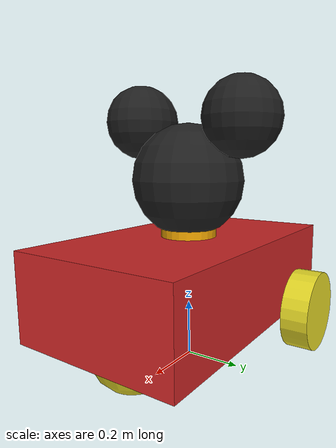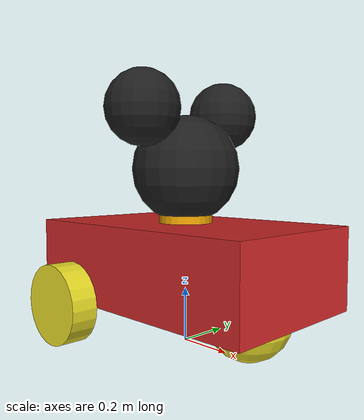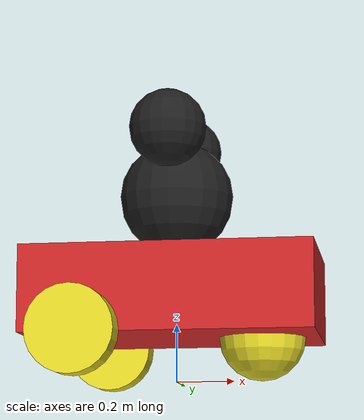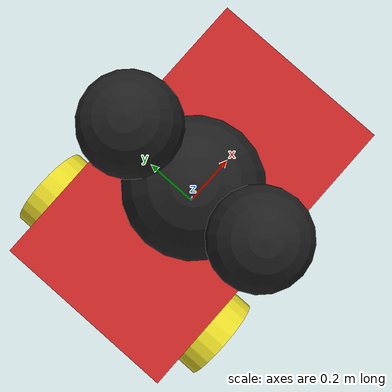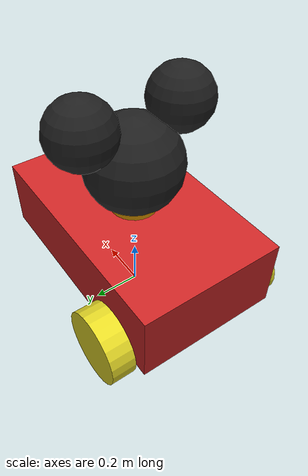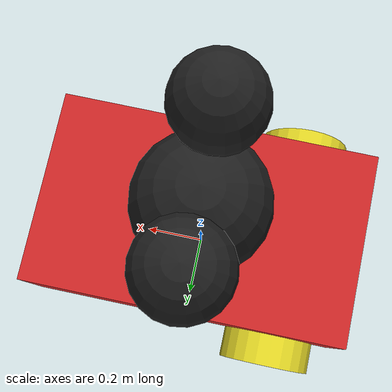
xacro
<?xml version="1.0"?>
<!-- URDF DESCRIPTION OF THE DIFFERENTIAL DRIVE ROBOT               -->
<!-- Made by Aleksandar Haber                                       -->
<!-- See the license!                                               -->
<!-- This code is the ownership of Aleksandar Haber                 -->
<!-- FOR ALL THE DIMENSIONS SEE THE PDF FILES THAT COME WITH THIS TUTORIAL  -->
<robot name="differential_drive_robot" xmlns:xacro="https://www.ros.org/wiki/xacro">

<!--            Geometry  and constants                             -->
<!-- Pi constant -->
<xacro:property name="pi_const" value="3.14159265"/>

<!-- Body dimensions -->
<xacro:property name="a" value="1"  />
<xacro:property name="b" value="0.3" />
<xacro:property name="c" value="0.6"/>

<!-- Wheel and castor dimensions -->
<!-- Wheel and caster radius -->
<xacro:property name="r" value="0.15"/>
<!-- Wheel width -->
<xacro:property name="d" value="0.1"/>

<xacro:property name="s1" value="${b/2+r}"/>
<xacro:property name="s2" value="${2*r}"/>
<xacro:property name="s3" value="${2*r}"/>
<xacro:property name="s4" value="${c/2+d/2}"/>

<!--     Mass and inertia                                           -->

<!-- Material density -->
<!-- Body material density -->
<xacro:property name="d1" value="2710.0"/>
<!-- Wheel material density -->
<xacro:property name="d2" value="2710.0"/>
<!-- Caster material density -->
<xacro:property name="d3" value="2710.0"/>

<!-- Robot body mass, wheel mass, caster mass -->
<!-- body  -->
<xacro:property name="m1" value="${d1*a*b*c}"/>
<!-- wheel -->
<xacro:property name="m2" value="${d2*pi_const*r*r*d}"/>
<!-- caster -->
<xacro:property name="m3" value="${d3*(4.0/3.0)*pi_const*r*r*r}"/>

<!-- Moments of inertia of the robot body -->
<xacro:property name="Ix_body" value="${(1/12)*m1*(b*b+c*c) }" />
<xacro:property name="Iy_body" value="${(1/12)*m1*(a*a+b*b) }" />
<xacro:property name="Iz_body" value="${(1/12)*m1*(a*a+c*c) }" />

<!-- Moments of inertia of the wheel -->
<xacro:property name="Iz_wheel" value="${0.5*m2*r*r}" />
<xacro:property name="I_wheel" value="${(1.0/12.0)*m2*(3.0*r*r+d*d)}" />

<!-- Moments of inertia of the caster sphere -->
<xacro:property name="I_caster" value="${(2.0/5.0)*m3*r*r}" />

<!-- This macro defines the complete inertial section of the robot body -->
<!-- It is used later in the code -->
<xacro:macro name="inertia_body">
    <inertial>
    <!-- Displacement and orientation of the center of the mass frame of the link with respect to the link frame oritin -->
    <origin rpy="0 0 0" xyz="0 0 ${s1}"/>
    <mass value="${m1}"/>
    <inertia ixx="${Ix_body}" ixy="0.0" ixz="0.0" iyy="${Iy_body}" iyz="0" izz="${Iz_body}" />
    </inertial>
</xacro:macro>

<!-- This macro defines the complete inertial section of the wheel -->
<!-- It is used later in the code -->
<xacro:macro name="inertia_wheel">
    <inertial>
    <origin rpy="1.570795 0 0" xyz="0 0 0"/>
    <mass value="${m2}"/>
    <inertia ixx="${I_wheel}" ixy="0.0" ixz="0.0" iyy="${I_wheel}" iyz="0" izz="${Iz_wheel}" />
    </inertial>
</xacro:macro>

<!-- This macro defines the complete inertial section of the caster -->
<!-- It is used later in the code -->
<xacro:macro name="inertia_caster">
    <inertial>
    <origin rpy="0 0 0" xyz="0 0 0"/>
    <mass value="${m3}"/>
    <inertia ixx="${I_caster}" ixy="0.0" ixz="0.0" iyy="${I_caster}" iyz="0" izz="${I_caster}" />
    </inertial>
</xacro:macro>

<!--     Aesthetic top ball (with collision)                        -->

<!-- Ball radius -->
<xacro:property name="r_ball" value="0.2"/>

<!-- Ball material density (reuse d3 or make a new one) -->
<xacro:property name="d_ball" value="${d3}"/>

<!-- Ball mass (solid sphere) -->
<xacro:property name="m_ball" value="${d_ball*(4.0/3.0)*pi_const*r_ball*r_ball*r_ball}"/>

<!-- Ball inertia (solid sphere): I = 2/5 m r^2 -->
<xacro:property name="I_ball" value="${(2.0/5.0)*m_ball*r_ball*r_ball}"/>

<xacro:macro name="inertia_ball">
  <inertial>
    <origin rpy="0 0 0" xyz="0 0 0"/>
    <mass value="${m_ball}"/>
    <inertia ixx="${I_ball}" ixy="0.0" ixz="0.0"
             iyy="${I_ball}" iyz="0.0"
             izz="${I_ball}" />
  </inertial>
</xacro:macro>

<!--     Aesthetic Ear                     -->

<!-- Ear radius -->
<xacro:property name="r_ear" value="0.1333"/>

<!-- Ear material density (reuse d3 or make a new one) -->
<xacro:property name="d_ear" value="${d3}"/>

<!-- Ear mass (solid sphere) -->
<xacro:property name="m_ear" value="${d_ear*(4.0/3.0)*pi_const*r_ear*r_ear*r_ear}"/>

<!-- Ear inertia (solid sphere): I = 2/5 m r^2 -->
<xacro:property name="I_ear" value="${(2.0/5.0)*m_ear*r_ear*r_ear}"/>

<xacro:macro name="inertia_ear">
  <inertial>
    <origin rpy="0 0 0" xyz="0 0 0"/>
    <mass value="${m_ear}"/>
    <inertia ixx="${I_ear}" ixy="0.0" ixz="0.0"
             iyy="${I_ear}" iyz="0.0"
             izz="${I_ear}" />
  </inertial>
</xacro:macro>

<!--            Include additional files                           -->

<!-- Over here we include the file that defines extra Gazebo options and motion control driver -->
<xacro:include filename="$(find mobile_robot)/model/robot.gazebo" />

<!-- FROM HERE WE DEFINE LINKS, JOINTS                             -->

<!-- START: Fictious link of the robot                           -->

<!-- We need to have this link otherwise Gazebo will complain -->
<link name="base_footprint"> </link>
<joint name="body_link_joint" type="fixed">
    <parent link="base_footprint"/>
    <child link="body_link"/>
</joint>

<!-- END: Fictious link of the robot                               -->

<!-- START: Body link of the robot                                 -->
<link name="body_link">
    <visual>
        <geometry>
            <box size="${a} ${c} ${b}" />
        </geometry>
    <!-- Displacement and orientation of the geometric center of the link with respect to the origin-->
    <origin rpy="0 0 0" xyz="0 0 ${s1}"/>
    </visual>

    <collision>
        <geometry>
            <box size="${a} ${c} ${b}" />
        </geometry>
    <origin rpy="0 0 0" xyz="0 0 ${s1}"/>
    </collision>

    <xacro:inertia_body />
</link>

<!-- END: Body link of the robot -->

<!-- START: Back right wheel of the robot and the joint            -->

<joint name="wheel1_joint" type="continuous" >
    <parent link="body_link"/>
    <child link="wheel1_link" />
    <origin xyz="${-s2} ${-s4} ${r}" rpy="0 0 0" />
    <axis xyz="0 1 0"/>
    <limit effort="50000" velocity="10" />
    <dynamics damping="1.0" friction="1.0" />
</joint>

<link name="wheel1_link">
    <visual>
        <origin rpy="1.570795 0 0" xyz="0 0 0"/>
        <geometry>
            <cylinder length="${d}" radius="${r}"/>
        </geometry>
    </visual>

    <collision>
        <origin rpy="1.570795 0 0" xyz="0 0 0"/>
        <geometry>
            <cylinder length="${d}" radius="${r}"/>
        </geometry>
    </collision>

    <xacro:inertia_wheel />
</link>

<!-- END: Back of right wheel of the robot and the joint -->

<!-- START: Back left wheel of the robot and the joint -->

<joint name="wheel2_joint" type="continuous" >
    <parent link="body_link"/>
    <child link="wheel2_link" />
    <origin xyz="${-s2} ${s4} ${r}" rpy="0 0 0" />
    <axis xyz="0 1 0"/>
    <limit effort="50000" velocity="10" />
    <dynamics damping="1.0" friction="1.0" />
</joint>

<link name="wheel2_link">
    <visual>
        <origin rpy="1.570795 0 0" xyz="0 0 0"/>
        <geometry>
            <cylinder length="${d}" radius="${r}"/>
        </geometry>
    </visual>

    <collision>
        <origin rpy="1.570795 0 0" xyz="0 0 0"/>
        <geometry>
            <cylinder length="${d}" radius="${r}"/>
        </geometry>
    </collision>
    <xacro:inertia_wheel />
</link>

<!-- END: Back left wheel of the robot and the joint -->

<!-- START: Caster wheel -->

<joint name="caster_joint" type="fixed" >
    <parent link="body_link"/>
    <child link="caster_link" />
    <origin xyz="${s3} 0 ${r}" rpy="0 0 0" />
</joint>

<link name="caster_link">
    <visual>
        <origin rpy="0 0 0" xyz="0 0 0"/>
        <geometry>
            <sphere radius="${r}" />
        </geometry>
    </visual>

    <collision>
        <origin rpy="0 0 0" xyz="0 0 0"/>
        <geometry>
            <sphere radius="${r}" />
        </geometry>
    </collision>
    <xacro:inertia_caster />
</link>

<!-- END: Caster wheel -->

<!-- START: Ball on top of chassis (visual + collision)            -->

<joint name="top_ball_joint" type="continuous">
  <parent link="body_link"/>
  <child link="top_ball_link"/>
  <origin xyz="0 0 ${s1 + b/2 + r_ball}" rpy="0 0 0"/>
  <axis xyz="0 0 1"/>
  <limit effort="5.0" velocity="2.0"/>
  <dynamics damping="0.2" friction="0.0"/>
</joint>

<link name="top_ball_link">
  <visual>
    <origin xyz="0 0 0" rpy="0 0 0"/>
    <geometry>
      <sphere radius="${r_ball}"/>
    </geometry>
  </visual>

  <collision>
    <origin xyz="0 0 0" rpy="0 0 0"/>
    <geometry>
      <sphere radius="${r_ball}"/>
    </geometry>
  </collision>

  <xacro:inertia_ball />
</link>

<!-- END: Ball on top of chassis                                   -->

<!-- START: Left Ear (visual + collision)            -->

<joint name="left_ear_joint" type="fixed">
  <parent link="top_ball_link"/>
  <child link="left_ear_link"/>
  <origin xyz="0 ${r_ball*0.7071 + r_ear*0.5} ${r_ball*0.7071 + r_ear*0.5}" rpy="0 0 0"/>
</joint>

<link name="left_ear_link">
  <visual>
    <origin xyz="0 0 0" rpy="0 0 0"/>
    <geometry>
      <sphere radius="${r_ear}"/>
    </geometry>
  </visual>

  <collision>
    <origin xyz="0 0 0" rpy="0 0 0"/>
    <geometry>
      <sphere radius="${r_ear}"/>
    </geometry>
  </collision>

  <xacro:inertia_ear />
</link>

<!-- END: Left Ear (visual + collision)                                   -->

<!-- START: Right Ear (visual + collision)            -->

<joint name="right_ear_joint" type="fixed">
  <parent link="top_ball_link"/>
  <child link="right_ear_link"/>
  <origin xyz="0 ${-r_ball*0.7071 - r_ear*0.5} ${r_ball*0.7071 + r_ear*0.5}" rpy="0 0 0"/>
</joint>

<link name="right_ear_link">
  <visual>
    <origin xyz="0 0 0" rpy="0 0 0"/>
    <geometry>
      <sphere radius="${r_ear}"/>
    </geometry>
  </visual>

  <collision>
    <origin xyz="0 0 0" rpy="0 0 0"/>
    <geometry>
      <sphere radius="${r_ear}"/>
    </geometry>
  </collision>

  <xacro:inertia_ear />
</link>

<!-- END: Right Ear (visual + collision)                                   -->

<!-- START: LIDAR            -->

<joint name="lidar_joint" type="fixed">
    <origin xyz="0.0 0 ${b+r}" rpy="0 0 0"/>
    <parent link="body_link"/>
    <child link="lidar_link"/>
    <axis xyz="0 1 0" rpy="0 0 0"/>
</joint>

<link name='lidar_link'>
    <visual>
      <origin xyz="0 0 0.05" rpy="0 0 0"/>
      <geometry>
        <cylinder length="0.1" radius="0.1"/>
      </geometry>
    </visual>

    <collision name='collision'>
      <origin xyz="0 0 0.05" rpy="0 0 0"/>
      <geometry>
        <cylinder length="0.1" radius="0.1"/>
      </geometry>
    </collision>

    <inertial>
      <mass value="1e-6"/>
      <origin xyz="0 0 0" rpy="0 0 0"/>
      <inertia ixx="1e-6" ixy="0" ixz="0"
               iyy="1e-6" iyz="0" izz="1e-6"
      />
    </inertial>
</link>

<!-- END: LIDAR            -->

</robot>
